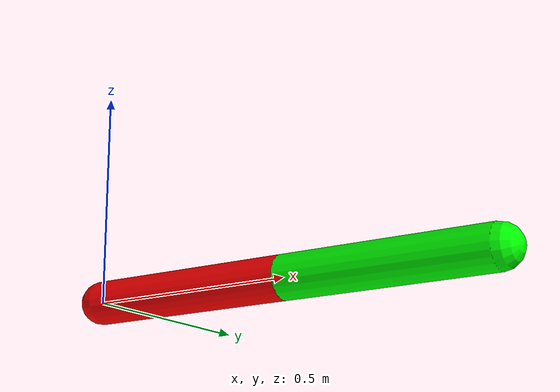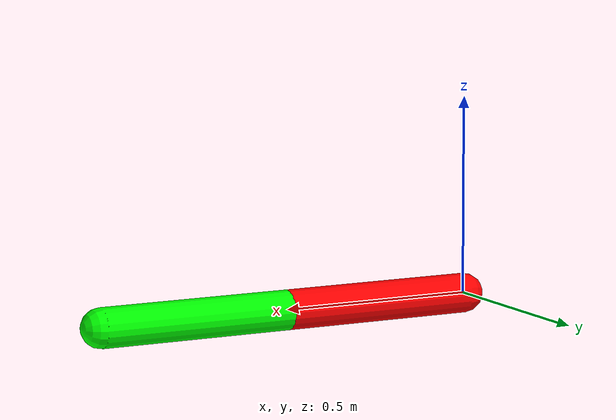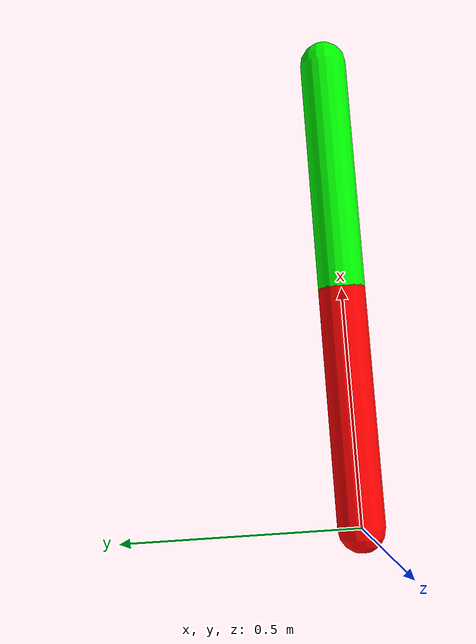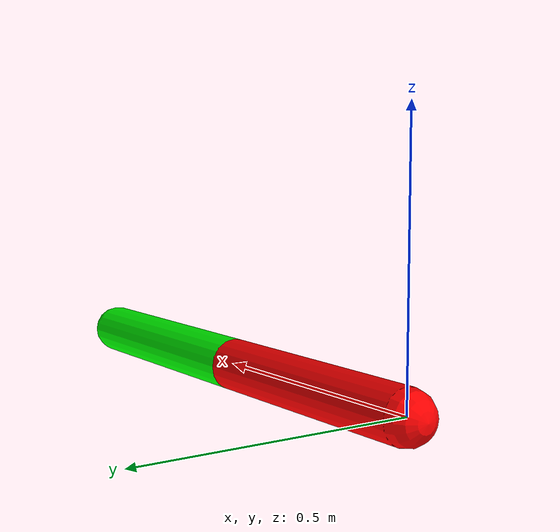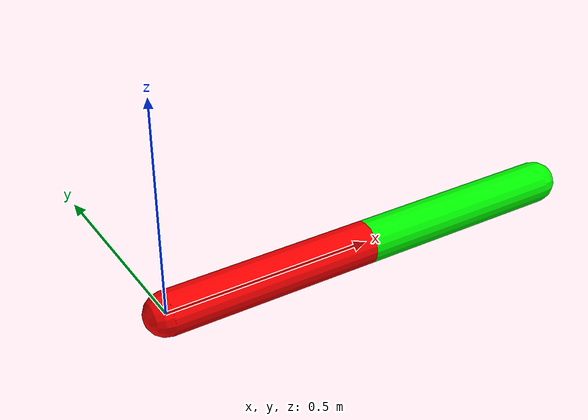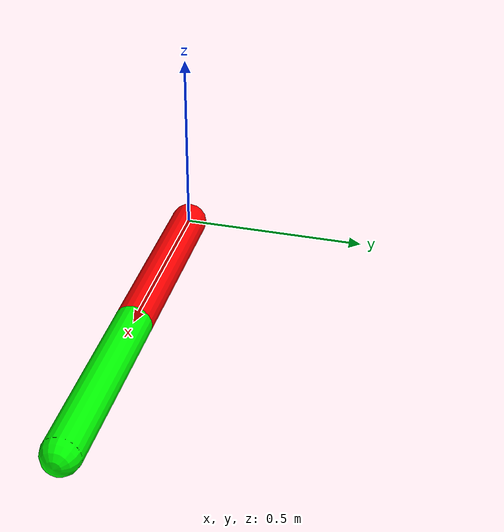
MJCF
<mujoco>
  <option gravity="0 0 -9.81" integrator="implicit"/>
  <default>
    <joint damping="0" frictionloss="0" armature="0"/>
    <geom contype="0" conaffinity="0"/>
  </default>
  <worldbody>
    <body name="link1" pos="0 0 0">
      <joint name="j1" type="hinge" axis="0 0 1" limited="false"/>
      <geom type="capsule" size="0.05" density="4000" fromto="0 0 0 0.5 0 0" rgba="1 0 0 1"/>
      <body name="link2" pos="0.5 0 0">
        <joint name="j2" type="hinge" axis="0 0 1" limited="false"/>
        <geom type="capsule" size="0.05" density="4000" fromto="0 0 0 0.5 0 0" rgba="0 1 0 1"/>
      </body>
    </body>
  </worldbody>
  <actuator>
    <motor joint="j1" gear="1"/>
    <motor joint="j2" gear="1"/>
  </actuator>
</mujoco>
